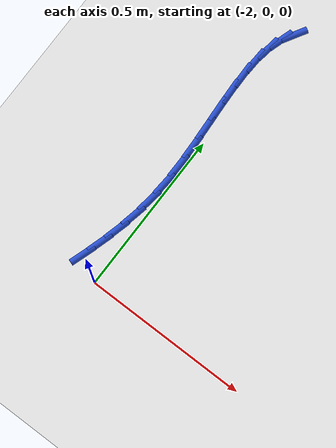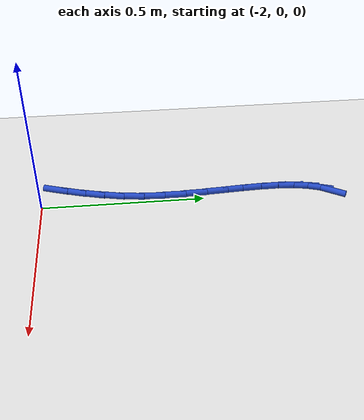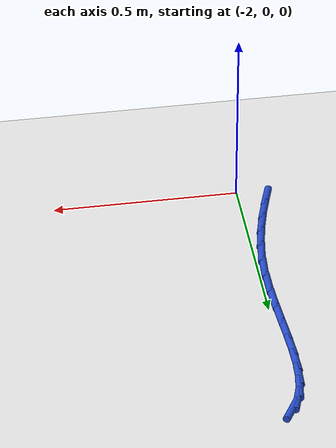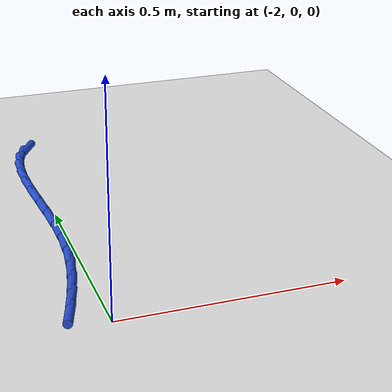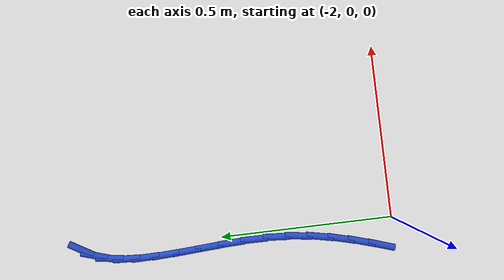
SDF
<sdf version="1.6">
 <world name="default">
  <model name="ground_plane">
   <static>1</static>
   <link name="link">
    <collision name="collision">
     <geometry><plane><normal>0 0 1</normal><size>100 100</size></plane></geometry>
     <surface><friction><ode><mu>100</mu><mu2>50</mu2></ode></friction></surface>
    </collision>
    <visual name="visual">
     <cast_shadows>0</cast_shadows>
     <geometry><plane><normal>0 0 1</normal><size>100 100</size></plane></geometry>
     <material>
      <script><uri>file://media/materials/scripts/gazebo.material</uri><name>Gazebo/WhiteGlow</name></script>
     </material>
    </visual>
   </link>
  </model>
  <model name="line">
   <link name="link_49">
    <pose>-1.9854836617078238 0.9057760465894169 0.01 0 1.57 1.0409626153478937</pose>
    <collision name="collision">
     <geometry><cylinder><radius>0.01</radius><length>0.08</length></cylinder></geometry>
    </collision>
    <visual name="visual">
     <material>
      <script><name>Gazebo/Blue</name><uri>file://media/materials/scripts/gazebo.material</uri></script>
     </material>
     <geometry><cylinder><radius>0.01</radius><length>0.08</length></cylinder></geometry>
    </visual>
   </link>
   <link name="link_50">
    <pose>-2.0062613980512047 0.8703006132828389 0.01 0 1.57 1.2670732486194216</pose>
    <collision name="collision">
     <geometry><cylinder><radius>0.01</radius><length>0.08</length></cylinder></geometry>
    </collision>
    <visual name="visual">
     <material>
      <script><name>Gazebo/Blue</name><uri>file://media/materials/scripts/gazebo.material</uri></script>
     </material>
     <geometry><cylinder><radius>0.01</radius><length>0.08</length></cylinder></geometry>
    </visual>
   </link>
   <link name="link_51">
    <pose>-2.0196992713414064 0.8274256847338329 0.01 0 1.57 1.4222203342025925</pose>
    <collision name="collision">
     <geometry><cylinder><radius>0.01</radius><length>0.08</length></cylinder></geometry>
    </collision>
    <visual name="visual">
     <material>
      <script><name>Gazebo/Blue</name><uri>file://media/materials/scripts/gazebo.material</uri></script>
     </material>
     <geometry><cylinder><radius>0.01</radius><length>0.08</length></cylinder></geometry>
    </visual>
   </link>
   <link name="link_52">
    <pose>-2.02707181055566 0.7781700148918542 0.01 0 1.57 1.5235622643235207</pose>
    <collision name="collision">
     <geometry><cylinder><radius>0.01</radius><length>0.08</length></cylinder></geometry>
    </collision>
    <visual name="visual">
     <material>
      <script><name>Gazebo/Blue</name><uri>file://media/materials/scripts/gazebo.material</uri></script>
     </material>
     <geometry><cylinder><radius>0.01</radius><length>0.08</length></cylinder></geometry>
    </visual>
   </link>
   <link name="link_53">
    <pose>-2.029653544671198 0.7235523577063565 0.01 0 1.57 -1.5549474522741966</pose>
    <collision name="collision">
     <geometry><cylinder><radius>0.01</radius><length>0.08</length></cylinder></geometry>
    </collision>
    <visual name="visual">
     <material>
      <script><name>Gazebo/Blue</name><uri>file://media/materials/scripts/gazebo.material</uri></script>
     </material>
     <geometry><cylinder><radius>0.01</radius><length>0.08</length></cylinder></geometry>
    </visual>
   </link>
   <link name="link_54">
    <pose>-2.028719002665251 0.6645914671267943 0.01 0 1.57 -1.5198447140246054</pose>
    <collision name="collision">
     <geometry><cylinder><radius>0.01</radius><length>0.08</length></cylinder></geometry>
    </collision>
    <visual name="visual">
     <material>
      <script><name>Gazebo/Blue</name><uri>file://media/materials/scripts/gazebo.material</uri></script>
     </material>
     <geometry><cylinder><radius>0.01</radius><length>0.08</length></cylinder></geometry>
    </visual>
   </link>
   <link name="link_55">
    <pose>-2.0255427135150508 0.6023060971026223 0.01 0 1.57 -1.5067342840312044</pose>
    <collision name="collision">
     <geometry><cylinder><radius>0.01</radius><length>0.08</length></cylinder></geometry>
    </collision>
    <visual name="visual">
     <material>
      <script><name>Gazebo/Blue</name><uri>file://media/materials/scripts/gazebo.material</uri></script>
     </material>
     <geometry><cylinder><radius>0.01</radius><length>0.08</length></cylinder></geometry>
    </visual>
   </link>
   <link name="link_56">
    <pose>-2.021399206197829 0.5377150015832954 0.01 0 1.57 -1.5126302424585851</pose>
    <collision name="collision">
     <geometry><cylinder><radius>0.01</radius><length>0.08</length></cylinder></geometry>
    </collision>
    <visual name="visual">
     <material>
      <script><name>Gazebo/Blue</name><uri>file://media/materials/scripts/gazebo.material</uri></script>
     </material>
     <geometry><cylinder><radius>0.01</radius><length>0.08</length></cylinder></geometry>
    </visual>
   </link>
   <link name="link_57">
    <pose>-2.017563009690816 0.47183693451826775 0.01 0 1.57 -1.5367281323878144</pose>
    <collision name="collision">
     <geometry><cylinder><radius>0.01</radius><length>0.08</length></cylinder></geometry>
    </collision>
    <visual name="visual">
     <material>
      <script><name>Gazebo/Blue</name><uri>file://media/materials/scripts/gazebo.material</uri></script>
     </material>
     <geometry><cylinder><radius>0.01</radius><length>0.08</length></cylinder></geometry>
    </visual>
   </link>
   <link name="link_58">
    <pose>-2.0153086529712443 0.4056906498569933 0.01 0 1.57 1.561590911216485</pose>
    <collision name="collision">
     <geometry><cylinder><radius>0.01</radius><length>0.08</length></cylinder></geometry>
    </collision>
    <visual name="visual">
     <material>
      <script><name>Gazebo/Blue</name><uri>file://media/materials/scripts/gazebo.material</uri></script>
     </material>
     <geometry><cylinder><radius>0.01</radius><length>0.08</length></cylinder></geometry>
    </visual>
   </link>
   <link name="link_59">
    <pose>-2.015910665016346 0.3402949015489272 0.01 0 1.57 1.4971232808433605</pose>
    <collision name="collision">
     <geometry><cylinder><radius>0.01</radius><length>0.08</length></cylinder></geometry>
    </collision>
    <visual name="visual">
     <material>
      <script><name>Gazebo/Blue</name><uri>file://media/materials/scripts/gazebo.material</uri></script>
     </material>
     <geometry><cylinder><radius>0.01</radius><length>0.08</length></cylinder></geometry>
    </visual>
   </link>
   <link name="link_60">
    <pose>-2.020608225100504 0.27664804214937144 0.01 0 1.57 1.4244479051725245</pose>
    <collision name="collision">
     <geometry><cylinder><radius>0.01</radius><length>0.08</length></cylinder></geometry>
    </collision>
    <visual name="visual">
     <material>
      <script><name>Gazebo/Blue</name><uri>file://media/materials/scripts/gazebo.material</uri></script>
     </material>
     <geometry><cylinder><radius>0.01</radius><length>0.08</length></cylinder></geometry>
    </visual>
   </link>
   <link name="link_61">
    <pose>-2.0296677228586386 0.21518699757450907 0.01 0 1.57 1.3616915624001051</pose>
    <collision name="collision">
     <geometry><cylinder><radius>0.01</radius><length>0.08</length></cylinder></geometry>
    </collision>
    <visual name="visual">
     <material>
      <script><name>Gazebo/Blue</name><uri>file://media/materials/scripts/gazebo.material</uri></script>
     </material>
     <geometry><cylinder><radius>0.01</radius><length>0.08</length></cylinder></geometry>
    </visual>
   </link>
   <link name="link_62">
    <pose>-2.0422847480504855 0.15573070239820427 0.01 0 1.57 1.3111984660854117</pose>
    <collision name="collision">
     <geometry><cylinder><radius>0.01</radius><length>0.08</length></cylinder></geometry>
    </collision>
    <visual name="visual">
     <material>
      <script><name>Gazebo/Blue</name><uri>file://media/materials/scripts/gazebo.material</uri></script>
     </material>
     <geometry><cylinder><radius>0.01</radius><length>0.08</length></cylinder></geometry>
    </visual>
   </link>
   <link name="link_63">
    <pose>-2.0575998820453765 0.09806634417061076 0.01 0 1.57 1.2739787042761614</pose>
    <collision name="collision">
     <geometry><cylinder><radius>0.01</radius><length>0.08</length></cylinder></geometry>
    </collision>
    <visual name="visual">
     <material>
      <script><name>Gazebo/Blue</name><uri>file://media/materials/scripts/gazebo.material</uri></script>
     </material>
     <geometry><cylinder><radius>0.01</radius><length>0.08</length></cylinder></geometry>
    </visual>
   </link>
   <link name="link_64">
    <pose>-2.074753706212641 0.04198111044188201 0.01 0 1.57 1.250799211804684</pose>
    <collision name="collision">
     <geometry><cylinder><radius>0.01</radius><length>0.08</length></cylinder></geometry>
    </collision>
    <visual name="visual">
     <material>
      <script><name>Gazebo/Blue</name><uri>file://media/materials/scripts/gazebo.material</uri></script>
     </material>
     <geometry><cylinder><radius>0.01</radius><length>0.08</length></cylinder></geometry>
    </visual>
   </link>
  </model>
 </world>
</sdf>
